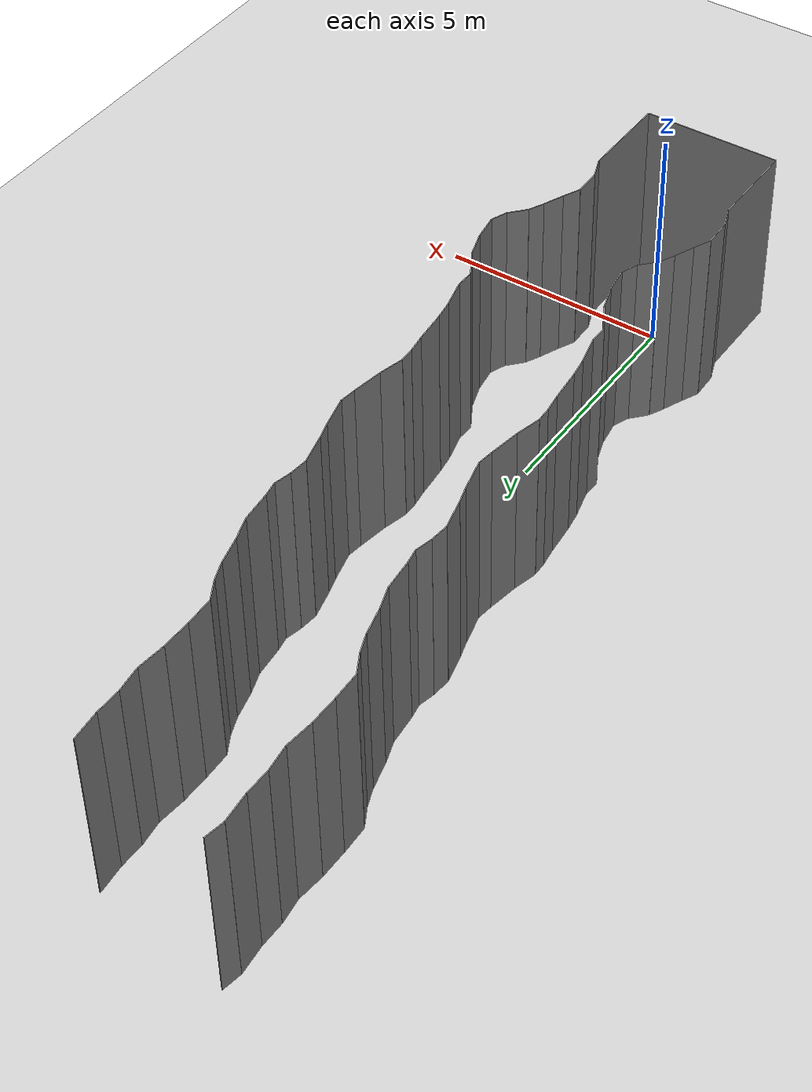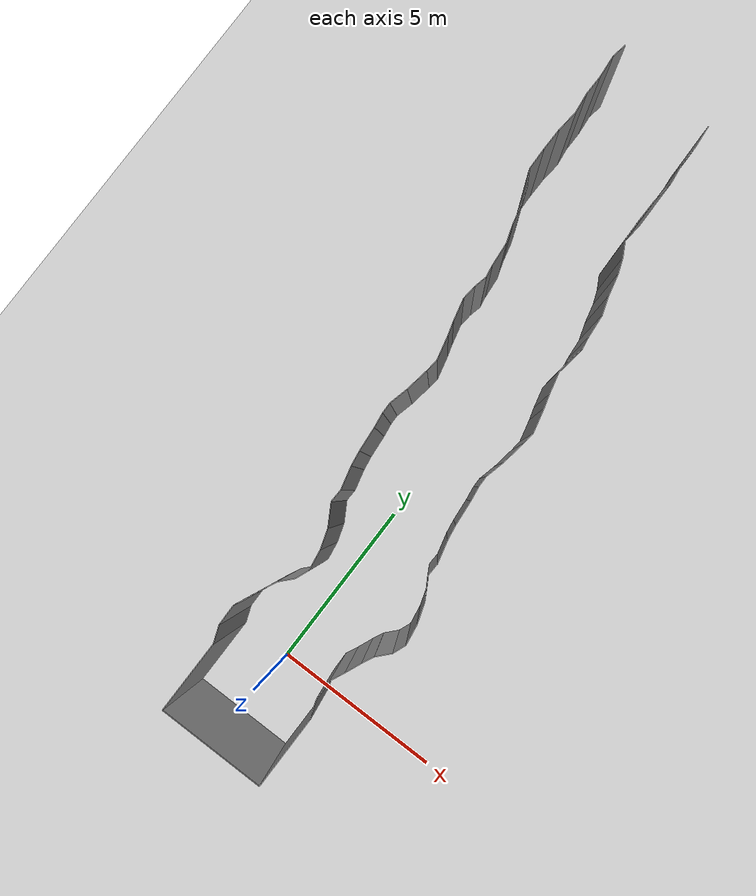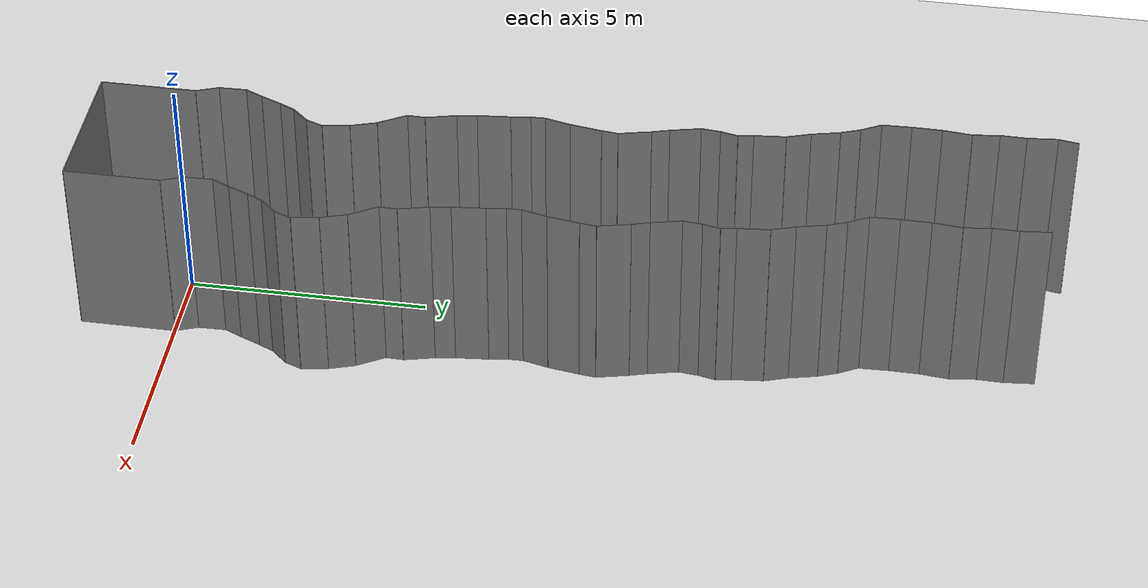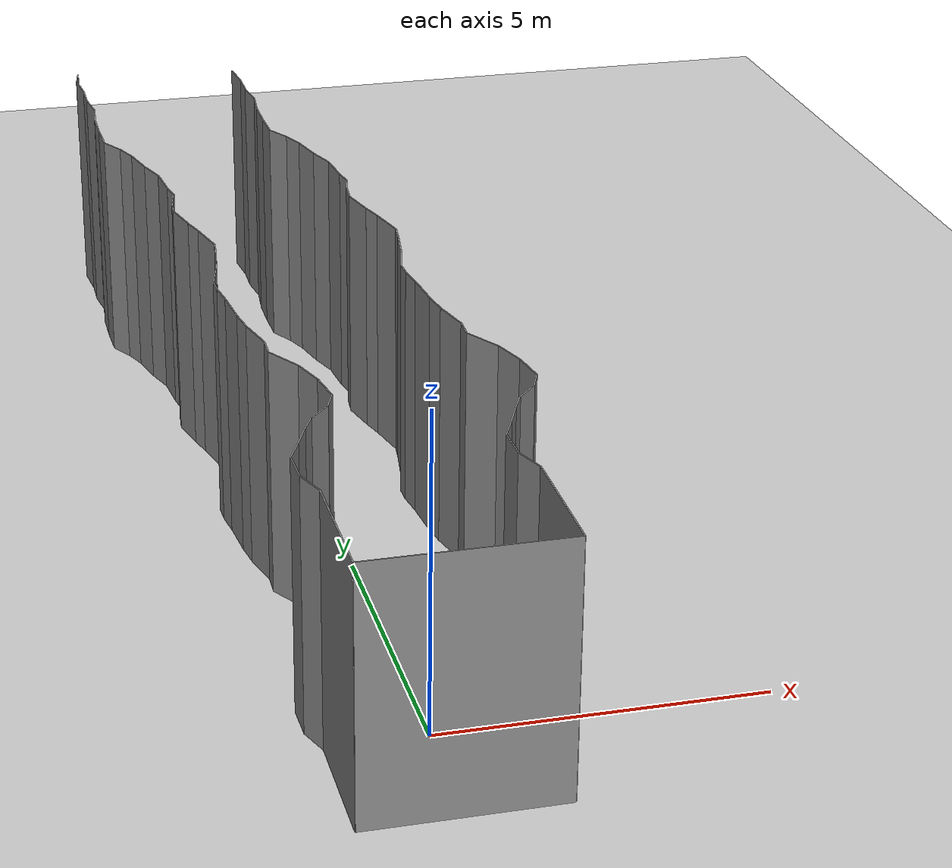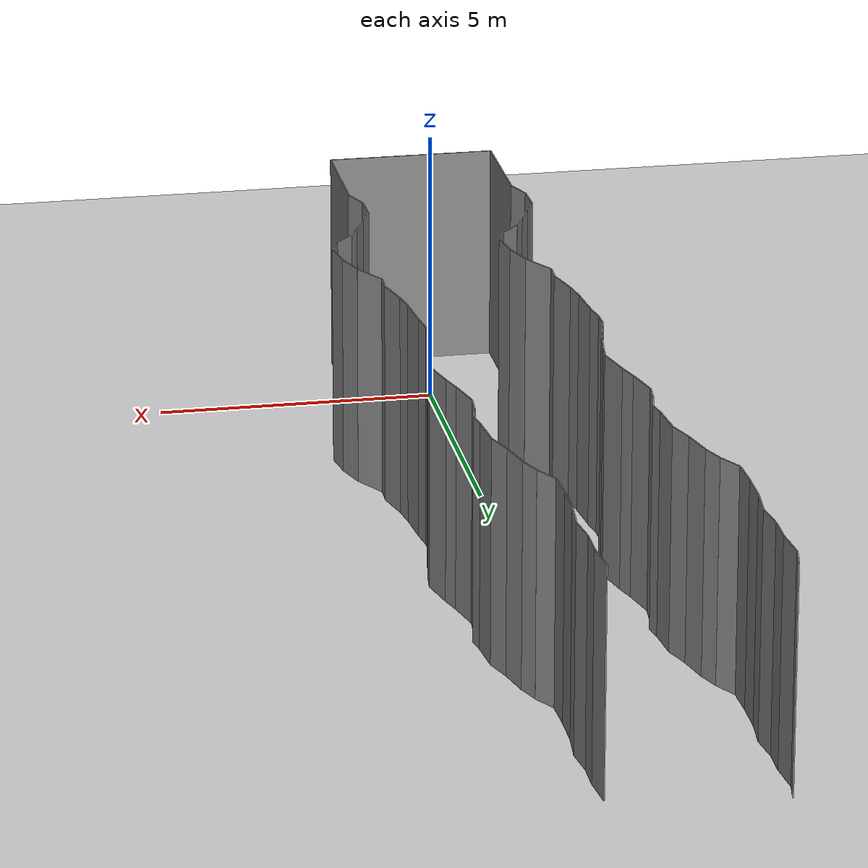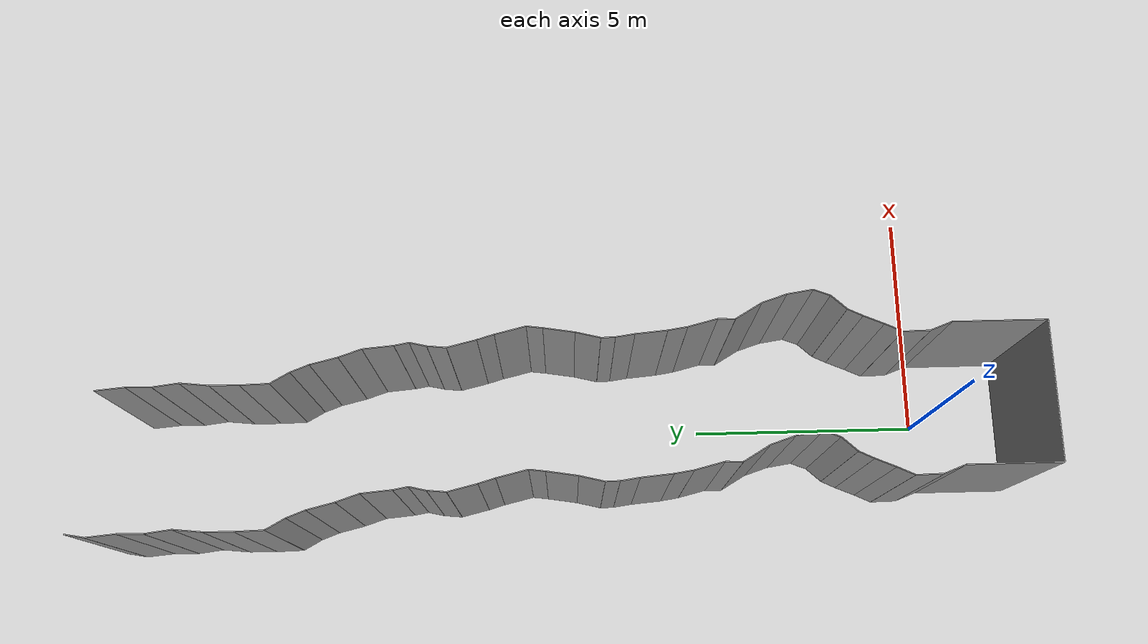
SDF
<sdf version="1.6">
 <world name="default">
  <model name="ground_plane">
   <static>1</static>
   <link name="link">
    <collision name="collision">
     <geometry><plane><normal>0 0 1</normal><size>200 200</size></plane></geometry>
     <surface><friction><ode><mu>100</mu><mu2>50</mu2></ode></friction></surface>
    </collision>
    <visual name="visual">
     <cast_shadows>0</cast_shadows>
     <geometry><plane><normal>0 0 1</normal><size>200 200</size></plane></geometry>
     <material>
      <script><uri>file://media/materials/scripts/gazebo.material</uri><name>Gazebo/Grey</name></script>
     </material>
    </visual>
   </link>
   <pose>0 100 0 0 -0 0</pose>
  </model>
  <model name="wall_back">
   <static>1</static>
   <pose>0.0 -2 2 0.0 0 0.0</pose>
   <link name="link">
    <collision name="collision"><geometry><box><size>3 0.02 4</size></box></geometry></collision>
    <visual name="visual">
     <material>
      <script><name>Gazebo/Grey</name><uri>file://media/materials/scripts/gazebo.material</uri></script>
     </material>
     <geometry><box><size>3 0.02 4</size></box></geometry>
    </visual>
   </link>
  </model>
  <model name="wall_left">
   <static>1</static>
   <pose>1.5 -1 2 0 0 0.00</pose>
   <link name="link">
    <collision name="collision"><geometry><box><size>0.02 2 4</size></box></geometry></collision>
    <visual name="visual">
     <material>
      <script><name>Gazebo/Grey</name><uri>file://media/materials/scripts/gazebo.material</uri></script>
     </material>
     <geometry><box><size>0.02 2 4</size></box></geometry>
    </visual>
   </link>
  </model>
  <model name="wall_right">
   <static>1</static>
   <pose>-1.5 -1 2 0 0 0.00</pose>
   <link name="link">
    <collision name="collision"><geometry><box><size>0.02 2 4</size></box></geometry></collision>
    <visual name="visual">
     <material>
      <script><name>Gazebo/Grey</name><uri>file://media/materials/scripts/gazebo.material</uri></script>
     </material>
     <geometry><box><size>0.02 2 4</size></box></geometry>
    </visual>
   </link>
  </model>
  <model name="wall_0">
   <static>1</static>
   <pose>-1.5876242087305774 0.23122922117364325 2 0 0 0.3622287831516997</pose>
   <link name="link">
    <collision name="collision"><geometry><box><size>0.02 0.494550117502 4</size></box></geometry></collision>
    <visual name="visual">
     <material>
      <script><name>Gazebo/Grey</name><uri>file://media/materials/scripts/gazebo.material</uri></script>
     </material>
     <geometry><box><size>0.02 0.494550117502 4</size></box></geometry>
    </visual>
   </link>
  </model>
  <model name="wall_1">
   <static>1</static>
   <pose>1.4123757912694226 0.23122922117364325 2 0 0 0.3622287831516997</pose>
   <link name="link">
    <collision name="collision"><geometry><box><size>0.02 0.494550117502 4</size></box></geometry></collision>
    <visual name="visual">
     <material>
      <script><name>Gazebo/Grey</name><uri>file://media/materials/scripts/gazebo.material</uri></script>
     </material>
     <geometry><box><size>0.02 0.494550117502 4</size></box></geometry>
    </visual>
   </link>
  </model>
  <model name="wall_2">
   <static>1</static>
   <pose>-1.681142146697931 0.7510026568677637 2 0 0 0.020422900556318437</pose>
   <link name="link">
    <collision name="collision"><geometry><box><size>0.02 0.577208800271 4</size></box></geometry></collision>
    <visual name="visual">
     <material>
      <script><name>Gazebo/Grey</name><uri>file://media/materials/scripts/gazebo.material</uri></script>
     </material>
     <geometry><box><size>0.02 0.577208800271 4</size></box></geometry>
    </visual>
   </link>
  </model>
  <model name="wall_3">
   <static>1</static>
   <pose>1.318857853302069 0.7510026568677637 2 0 0 0.020422900556318437</pose>
   <link name="link">
    <collision name="collision"><geometry><box><size>0.02 0.577208800271 4</size></box></geometry></collision>
    <visual name="visual">
     <material>
      <script><name>Gazebo/Grey</name><uri>file://media/materials/scripts/gazebo.material</uri></script>
     </material>
     <geometry><box><size>0.02 0.577208800271 4</size></box></geometry>
    </visual>
   </link>
  </model>
  <model name="wall_4">
   <static>1</static>
   <pose>-1.6010782179631144 1.2240133101605413 2 0 0 -0.4360630841983263</pose>
   <link name="link">
    <collision name="collision"><geometry><box><size>0.02 0.407021306554 4</size></box></geometry></collision>
    <visual name="visual">
     <material>
      <script><name>Gazebo/Grey</name><uri>file://media/materials/scripts/gazebo.material</uri></script>
     </material>
     <geometry><box><size>0.02 0.407021306554 4</size></box></geometry>
    </visual>
   </link>
  </model>
  <model name="wall_5">
   <static>1</static>
   <pose>1.3989217820368856 1.2240133101605413 2 0 0 -0.4360630841983263</pose>
   <link name="link">
    <collision name="collision"><geometry><box><size>0.02 0.407021306554 4</size></box></geometry></collision>
    <visual name="visual">
     <material>
      <script><name>Gazebo/Grey</name><uri>file://media/materials/scripts/gazebo.material</uri></script>
     </material>
     <geometry><box><size>0.02 0.407021306554 4</size></box></geometry>
    </visual>
   </link>
  </model>
  <model name="wall_6">
   <static>1</static>
   <pose>-1.4237968651613715 1.6241239041570183 2 0 0 -0.40059313762966453</pose>
   <link name="link">
    <collision name="collision"><geometry><box><size>0.02 0.468369166021 4</size></box></geometry></collision>
    <visual name="visual">
     <material>
      <script><name>Gazebo/Grey</name><uri>file://media/materials/scripts/gazebo.material</uri></script>
     </material>
     <geometry><box><size>0.02 0.468369166021 4</size></box></geometry>
    </visual>
   </link>
  </model>
  <model name="wall_7">
   <static>1</static>
   <pose>1.5762031348386285 1.6241239041570183 2 0 0 -0.40059313762966453</pose>
   <link name="link">
    <collision name="collision"><geometry><box><size>0.02 0.468369166021 4</size></box></geometry></collision>
    <visual name="visual">
     <material>
      <script><name>Gazebo/Grey</name><uri>file://media/materials/scripts/gazebo.material</uri></script>
     </material>
     <geometry><box><size>0.02 0.468369166021 4</size></box></geometry>
    </visual>
   </link>
  </model>
  <model name="wall_8">
   <static>1</static>
   <pose>-1.255907765241811 1.9977645921500706 2 0 0 -0.45125334471226686</pose>
   <link name="link">
    <collision name="collision"><geometry><box><size>0.02 0.351141940665 4</size></box></geometry></collision>
    <visual name="visual">
     <material>
      <script><name>Gazebo/Grey</name><uri>file://media/materials/scripts/gazebo.material</uri></script>
     </material>
     <geometry><box><size>0.02 0.351141940665 4</size></box></geometry>
    </visual>
   </link>
  </model>
  <model name="wall_9">
   <static>1</static>
   <pose>1.744092234758189 1.9977645921500706 2 0 0 -0.45125334471226686</pose>
   <link name="link">
    <collision name="collision"><geometry><box><size>0.02 0.351141940665 4</size></box></geometry></collision>
    <visual name="visual">
     <material>
      <script><name>Gazebo/Grey</name><uri>file://media/materials/scripts/gazebo.material</uri></script>
     </material>
     <geometry><box><size>0.02 0.351141940665 4</size></box></geometry>
    </visual>
   </link>
  </model>
  <model name="wall_10">
   <static>1</static>
   <pose>-1.02719313348299 2.321697933582735 2 0 0 -0.7420798301374374</pose>
   <link name="link">
    <collision name="collision"><geometry><box><size>0.02 0.450263974333 4</size></box></geometry></collision>
    <visual name="visual">
     <material>
      <script><name>Gazebo/Grey</name><uri>file://media/materials/scripts/gazebo.material</uri></script>
     </material>
     <geometry><box><size>0.02 0.450263974333 4</size></box></geometry>
    </visual>
   </link>
  </model>
  <model name="wall_11">
   <static>1</static>
   <pose>1.97280686651701 2.321697933582735 2 0 0 -0.7420798301374374</pose>
   <link name="link">
    <collision name="collision"><geometry><box><size>0.02 0.450263974333 4</size></box></geometry></collision>
    <visual name="visual">
     <material>
      <script><name>Gazebo/Grey</name><uri>file://media/materials/scripts/gazebo.material</uri></script>
     </material>
     <geometry><box><size>0.02 0.450263974333 4</size></box></geometry>
    </visual>
   </link>
  </model>
  <model name="wall_12">
   <static>1</static>
   <pose>-0.8063411990763812 2.6633253259963277 2 0 0 -0.3727617229133646</pose>
   <link name="link">
    <collision name="collision"><geometry><box><size>0.02 0.377291628684 4</size></box></geometry></collision>
    <visual name="visual">
     <material>
      <script><name>Gazebo/Grey</name><uri>file://media/materials/scripts/gazebo.material</uri></script>
     </material>
     <geometry><box><size>0.02 0.377291628684 4</size></box></geometry>
    </visual>
   </link>
  </model>
  <model name="wall_13">
   <static>1</static>
   <pose>2.1936588009236186 2.6633253259963277 2 0 0 -0.3727617229133646</pose>
   <link name="link">
    <collision name="collision"><geometry><box><size>0.02 0.377291628684 4</size></box></geometry></collision>
    <visual name="visual">
     <material>
      <script><name>Gazebo/Grey</name><uri>file://media/materials/scripts/gazebo.material</uri></script>
     </material>
     <geometry><box><size>0.02 0.377291628684 4</size></box></geometry>
    </visual>
   </link>
  </model>
  <model name="wall_14">
   <static>1</static>
   <pose>-0.7813794864882018 3.118658401591183 2 0 0 0.15516030058365127</pose>
   <link name="link">
    <collision name="collision"><geometry><box><size>0.02 0.566085498496 4</size></box></geometry></collision>
    <visual name="visual">
     <material>
      <script><name>Gazebo/Grey</name><uri>file://media/materials/scripts/gazebo.material</uri></script>
     </material>
     <geometry><box><size>0.02 0.566085498496 4</size></box></geometry>
    </visual>
   </link>
  </model>
  <model name="wall_15">
   <static>1</static>
   <pose>2.218620513511798 3.118658401591183 2 0 0 0.15516030058365127</pose>
   <link name="link">
    <collision name="collision"><geometry><box><size>0.02 0.566085498496 4</size></box></geometry></collision>
    <visual name="visual">
     <material>
      <script><name>Gazebo/Grey</name><uri>file://media/materials/scripts/gazebo.material</uri></script>
     </material>
     <geometry><box><size>0.02 0.566085498496 4</size></box></geometry>
    </visual>
   </link>
  </model>
  <model name="wall_16">
   <static>1</static>
   <pose>-0.9129578250842095 3.6653485683726394 2 0 0 0.3177733845068075</pose>
   <link name="link">
    <collision name="collision"><geometry><box><size>0.02 0.562244998529 4</size></box></geometry></collision>
    <visual name="visual">
     <material>
      <script><name>Gazebo/Grey</name><uri>file://media/materials/scripts/gazebo.material</uri></script>
     </material>
     <geometry><box><size>0.02 0.562244998529 4</size></box></geometry>
    </visual>
   </link>
  </model>
  <model name="wall_17">
   <static>1</static>
   <pose>2.0870421749157906 3.6653485683726394 2 0 0 0.3177733845068075</pose>
   <link name="link">
    <collision name="collision"><geometry><box><size>0.02 0.562244998529 4</size></box></geometry></collision>
    <visual name="visual">
     <material>
      <script><name>Gazebo/Grey</name><uri>file://media/materials/scripts/gazebo.material</uri></script>
     </material>
     <geometry><box><size>0.02 0.562244998529 4</size></box></geometry>
    </visual>
   </link>
  </model>
  <model name="wall_18">
   <static>1</static>
   <pose>-1.16911645493446 4.216795009771947 2 0 0 0.5344049792094162</pose>
   <link name="link">
    <collision name="collision"><geometry><box><size>0.02 0.660952990226 4</size></box></geometry></collision>
    <visual name="visual">
     <material>
      <script><name>Gazebo/Grey</name><uri>file://media/materials/scripts/gazebo.material</uri></script>
     </material>
     <geometry><box><size>0.02 0.660952990226 4</size></box></geometry>
    </visual>
   </link>
  </model>
  <model name="wall_19">
   <static>1</static>
   <pose>1.83088354506554 4.216795009771947 2 0 0 0.5344049792094162</pose>
   <link name="link">
    <collision name="collision"><geometry><box><size>0.02 0.660952990226 4</size></box></geometry></collision>
    <visual name="visual">
     <material>
      <script><name>Gazebo/Grey</name><uri>file://media/materials/scripts/gazebo.material</uri></script>
     </material>
     <geometry><box><size>0.02 0.660952990226 4</size></box></geometry>
    </visual>
   </link>
  </model>
  <model name="wall_20">
   <static>1</static>
   <pose>-1.331105441448903 4.685605805069305 2 0 0 -0.03432429499593664</pose>
   <link name="link">
    <collision name="collision"><geometry><box><size>0.02 0.36904143074 4</size></box></geometry></collision>
    <visual name="visual">
     <material>
      <script><name>Gazebo/Grey</name><uri>file://media/materials/scripts/gazebo.material</uri></script>
     </material>
     <geometry><box><size>0.02 0.36904143074 4</size></box></geometry>
    </visual>
   </link>
  </model>
  <model name="wall_21">
   <static>1</static>
   <pose>1.668894558551097 4.685605805069305 2 0 0 -0.03432429499593664</pose>
   <link name="link">
    <collision name="collision"><geometry><box><size>0.02 0.36904143074 4</size></box></geometry></collision>
    <visual name="visual">
     <material>
      <script><name>Gazebo/Grey</name><uri>file://media/materials/scripts/gazebo.material</uri></script>
     </material>
     <geometry><box><size>0.02 0.36904143074 4</size></box></geometry>
    </visual>
   </link>
  </model>
  <model name="wall_22">
   <static>1</static>
   <pose>-1.4038712028018625 5.185495743198005 2 0 0 0.24566048931518805</pose>
   <link name="link">
    <collision name="collision"><geometry><box><size>0.02 0.650485401973 4</size></box></geometry></collision>
    <visual name="visual">
     <material>
      <script><name>Gazebo/Grey</name><uri>file://media/materials/scripts/gazebo.material</uri></script>
     </material>
     <geometry><box><size>0.02 0.650485401973 4</size></box></geometry>
    </visual>
   </link>
  </model>
  <model name="wall_23">
   <static>1</static>
   <pose>1.5961287971981375 5.185495743198005 2 0 0 0.24566048931518805</pose>
   <link name="link">
    <collision name="collision"><geometry><box><size>0.02 0.650485401973 4</size></box></geometry></collision>
    <visual name="visual">
     <material>
      <script><name>Gazebo/Grey</name><uri>file://media/materials/scripts/gazebo.material</uri></script>
     </material>
     <geometry><box><size>0.02 0.650485401973 4</size></box></geometry>
    </visual>
   </link>
  </model>
  <model name="wall_24">
   <static>1</static>
   <pose>-1.5147877099640366 5.708636104299 2 0 0 0.15203950040561762</pose>
   <link name="link">
    <collision name="collision"><geometry><box><size>0.02 0.420171904778 4</size></box></geometry></collision>
    <visual name="visual">
     <material>
      <script><name>Gazebo/Grey</name><uri>file://media/materials/scripts/gazebo.material</uri></script>
     </material>
     <geometry><box><size>0.02 0.420171904778 4</size></box></geometry>
    </visual>
   </link>
  </model>
  <model name="wall_25">
   <static>1</static>
   <pose>1.4852122900359634 5.708636104299 2 0 0 0.15203950040561762</pose>
   <link name="link">
    <collision name="collision"><geometry><box><size>0.02 0.420171904778 4</size></box></geometry></collision>
    <visual name="visual">
     <material>
      <script><name>Gazebo/Grey</name><uri>file://media/materials/scripts/gazebo.material</uri></script>
     </material>
     <geometry><box><size>0.02 0.420171904778 4</size></box></geometry>
    </visual>
   </link>
  </model>
  <model name="wall_26">
   <static>1</static>
   <pose>-1.5774709605451498 6.2586213639950525 2 0 0 0.08991972691887315</pose>
   <link name="link">
    <collision name="collision"><geometry><box><size>0.02 0.687422842123 4</size></box></geometry></collision>
    <visual name="visual">
     <material>
      <script><name>Gazebo/Grey</name><uri>file://media/materials/scripts/gazebo.material</uri></script>
     </material>
     <geometry><box><size>0.02 0.687422842123 4</size></box></geometry>
    </visual>
   </link>
  </model>
  <model name="wall_27">
   <static>1</static>
   <pose>1.4225290394548502 6.2586213639950525 2 0 0 0.08991972691887315</pose>
   <link name="link">
    <collision name="collision"><geometry><box><size>0.02 0.687422842123 4</size></box></geometry></collision>
    <visual name="visual">
     <material>
      <script><name>Gazebo/Grey</name><uri>file://media/materials/scripts/gazebo.material</uri></script>
     </material>
     <geometry><box><size>0.02 0.687422842123 4</size></box></geometry>
    </visual>
   </link>
  </model>
  <model name="wall_28">
   <static>1</static>
   <pose>-1.6373584938601033 6.80442644468633 2 0 0 0.14167469839129435</pose>
   <link name="link">
    <collision name="collision"><geometry><box><size>0.02 0.411083223317 4</size></box></geometry></collision>
    <visual name="visual">
     <material>
      <script><name>Gazebo/Grey</name><uri>file://media/materials/scripts/gazebo.material</uri></script>
     </material>
     <geometry><box><size>0.02 0.411083223317 4</size></box></geometry>
    </visual>
   </link>
  </model>
  <model name="wall_29">
   <static>1</static>
   <pose>1.3626415061398967 6.80442644468633 2 0 0 0.14167469839129435</pose>
   <link name="link">
    <collision name="collision"><geometry><box><size>0.02 0.411083223317 4</size></box></geometry></collision>
    <visual name="visual">
     <material>
      <script><name>Gazebo/Grey</name><uri>file://media/materials/scripts/gazebo.material</uri></script>
     </material>
     <geometry><box><size>0.02 0.411083223317 4</size></box></geometry>
    </visual>
   </link>
  </model>
  <model name="wall_30">
   <static>1</static>
   <pose>-1.6694018304596874 7.158968021976017 2 0 0 0.01999350823538828</pose>
   <link name="link">
    <collision name="collision"><geometry><box><size>0.02 0.302179003537 4</size></box></geometry></collision>
    <visual name="visual">
     <material>
      <script><name>Gazebo/Grey</name><uri>file://media/materials/scripts/gazebo.material</uri></script>
     </material>
     <geometry><box><size>0.02 0.302179003537 4</size></box></geometry>
    </visual>
   </link>
  </model>
  <model name="wall_31">
   <static>1</static>
   <pose>1.3305981695403126 7.158968021976017 2 0 0 0.01999350823538828</pose>
   <link name="link">
    <collision name="collision"><geometry><box><size>0.02 0.302179003537 4</size></box></geometry></collision>
    <visual name="visual">
     <material>
      <script><name>Gazebo/Grey</name><uri>file://media/materials/scripts/gazebo.material</uri></script>
     </material>
     <geometry><box><size>0.02 0.302179003537 4</size></box></geometry>
    </visual>
   </link>
  </model>
  <model name="wall_32">
   <static>1</static>
   <pose>-1.60668591949283 7.577563180676779 2 0 0 -0.24093796002070506</pose>
   <link name="link">
    <collision name="collision"><geometry><box><size>0.02 0.550987198429 4</size></box></geometry></collision>
    <visual name="visual">
     <material>
      <script><name>Gazebo/Grey</name><uri>file://media/materials/scripts/gazebo.material</uri></script>
     </material>
     <geometry><box><size>0.02 0.550987198429 4</size></box></geometry>
    </visual>
   </link>
  </model>
  <model name="wall_33">
   <static>1</static>
   <pose>1.39331408050717 7.577563180676779 2 0 0 -0.24093796002070506</pose>
   <link name="link">
    <collision name="collision"><geometry><box><size>0.02 0.550987198429 4</size></box></geometry></collision>
    <visual name="visual">
     <material>
      <script><name>Gazebo/Grey</name><uri>file://media/materials/scripts/gazebo.material</uri></script>
     </material>
     <geometry><box><size>0.02 0.550987198429 4</size></box></geometry>
    </visual>
   </link>
  </model>
  <model name="wall_34">
   <static>1</static>
   <pose>-1.487517134799927 8.177891859906683 2 0 0 -0.15919845278859174</pose>
   <link name="link">
    <collision name="collision"><geometry><box><size>0.02 0.674109995206 4</size></box></geometry></collision>
    <visual name="visual">
     <material>
      <script><name>Gazebo/Grey</name><uri>file://media/materials/scripts/gazebo.material</uri></script>
     </material>
     <geometry><box><size>0.02 0.674109995206 4</size></box></geometry>
    </visual>
   </link>
  </model>
  <model name="wall_35">
   <static>1</static>
   <pose>1.512482865200073 8.177891859906683 2 0 0 -0.15919845278859174</pose>
   <link name="link">
    <collision name="collision"><geometry><box><size>0.02 0.674109995206 4</size></box></geometry></collision>
    <visual name="visual">
     <material>
      <script><name>Gazebo/Grey</name><uri>file://media/materials/scripts/gazebo.material</uri></script>
     </material>
     <geometry><box><size>0.02 0.674109995206 4</size></box></geometry>
    </visual>
   </link>
  </model>
  <model name="wall_36">
   <static>1</static>
   <pose>-1.412522938305828 8.683055036649566 2 0 0 -0.12444431391176167</pose>
   <link name="link">
    <collision name="collision"><geometry><box><size>0.02 0.347427431331 4</size></box></geometry></collision>
    <visual name="visual">
     <material>
      <script><name>Gazebo/Grey</name><uri>file://media/materials/scripts/gazebo.material</uri></script>
     </material>
     <geometry><box><size>0.02 0.347427431331 4</size></box></geometry>
    </visual>
   </link>
  </model>
  <model name="wall_37">
   <static>1</static>
   <pose>1.587477061694172 8.683055036649566 2 0 0 -0.12444431391176167</pose>
   <link name="link">
    <collision name="collision"><geometry><box><size>0.02 0.347427431331 4</size></box></geometry></collision>
    <visual name="visual">
     <material>
      <script><name>Gazebo/Grey</name><uri>file://media/materials/scripts/gazebo.material</uri></script>
     </material>
     <geometry><box><size>0.02 0.347427431331 4</size></box></geometry>
    </visual>
   </link>
  </model>
  <model name="wall_38">
   <static>1</static>
   <pose>-1.4709376676508863 9.189374222242328 2 0 0 0.23506058787245998</pose>
   <link name="link">
    <collision name="collision"><geometry><box><size>0.02 0.686784070273 4</size></box></geometry></collision>
    <visual name="visual">
     <material>
      <script><name>Gazebo/Grey</name><uri>file://media/materials/scripts/gazebo.material</uri></script>
     </material>
     <geometry><box><size>0.02 0.686784070273 4</size></box></geometry>
    </visual>
   </link>
  </model>
  <model name="wall_39">
   <static>1</static>
   <pose>1.5290623323491137 9.189374222242328 2 0 0 0.23506058787245998</pose>
   <link name="link">
    <collision name="collision"><geometry><box><size>0.02 0.686784070273 4</size></box></geometry></collision>
    <visual name="visual">
     <material>
      <script><name>Gazebo/Grey</name><uri>file://media/materials/scripts/gazebo.material</uri></script>
     </material>
     <geometry><box><size>0.02 0.686784070273 4</size></box></geometry>
    </visual>
   </link>
  </model>
  <model name="wall_40">
   <static>1</static>
   <pose>-1.6040678549878593 9.703110389431103 2 0 0 0.2874581484592028</pose>
   <link name="link">
    <collision name="collision"><geometry><box><size>0.02 0.374960172206 4</size></box></geometry></collision>
    <visual name="visual">
     <material>
      <script><name>Gazebo/Grey</name><uri>file://media/materials/scripts/gazebo.material</uri></script>
     </material>
     <geometry><box><size>0.02 0.374960172206 4</size></box></geometry>
    </visual>
   </link>
  </model>
  <model name="wall_41">
   <static>1</static>
   <pose>1.3959321450121407 9.703110389431103 2 0 0 0.2874581484592028</pose>
   <link name="link">
    <collision name="collision"><geometry><box><size>0.02 0.374960172206 4</size></box></geometry></collision>
    <visual name="visual">
     <material>
      <script><name>Gazebo/Grey</name><uri>file://media/materials/scripts/gazebo.material</uri></script>
     </material>
     <geometry><box><size>0.02 0.374960172206 4</size></box></geometry>
    </visual>
   </link>
  </model>
  <model name="wall_42">
   <static>1</static>
   <pose>-1.7329389687149759 10.197243570213887 2 0 0 0.23637074936883762</pose>
   <link name="link">
    <collision name="collision"><geometry><box><size>0.02 0.646672914891 4</size></box></geometry></collision>
    <visual name="visual">
     <material>
      <script><name>Gazebo/Grey</name><uri>file://media/materials/scripts/gazebo.material</uri></script>
     </material>
     <geometry><box><size>0.02 0.646672914891 4</size></box></geometry>
    </visual>
   </link>
  </model>
  <model name="wall_43">
   <static>1</static>
   <pose>1.2670610312850241 10.197243570213887 2 0 0 0.23637074936883762</pose>
   <link name="link">
    <collision name="collision"><geometry><box><size>0.02 0.646672914891 4</size></box></geometry></collision>
    <visual name="visual">
     <material>
      <script><name>Gazebo/Grey</name><uri>file://media/materials/scripts/gazebo.material</uri></script>
     </material>
     <geometry><box><size>0.02 0.646672914891 4</size></box></geometry>
    </visual>
   </link>
  </model>
  <model name="wall_44">
   <static>1</static>
   <pose>-1.7885054831007305 10.713606101822911 2 0 0 -0.09942066980862506</pose>
   <link name="link">
    <collision name="collision"><geometry><box><size>0.02 0.406038453251 4</size></box></geometry></collision>
    <visual name="visual">
     <material>
      <script><name>Gazebo/Grey</name><uri>file://media/materials/scripts/gazebo.material</uri></script>
     </material>
     <geometry><box><size>0.02 0.406038453251 4</size></box></geometry>
    </visual>
   </link>
  </model>
  <model name="wall_45">
   <static>1</static>
   <pose>1.2114945168992695 10.713606101822911 2 0 0 -0.09942066980862506</pose>
   <link name="link">
    <collision name="collision"><geometry><box><size>0.02 0.406038453251 4</size></box></geometry></collision>
    <visual name="visual">
     <material>
      <script><name>Gazebo/Grey</name><uri>file://media/materials/scripts/gazebo.material</uri></script>
     </material>
     <geometry><box><size>0.02 0.406038453251 4</size></box></geometry>
    </visual>
   </link>
  </model>
  <model name="wall_46">
   <static>1</static>
   <pose>-1.7268397135744855 11.09805291973203 2 0 0 -0.22375441806541252</pose>
   <link name="link">
    <collision name="collision"><geometry><box><size>0.02 0.374188315208 4</size></box></geometry></collision>
    <visual name="visual">
     <material>
      <script><name>Gazebo/Grey</name><uri>file://media/materials/scripts/gazebo.material</uri></script>
     </material>
     <geometry><box><size>0.02 0.374188315208 4</size></box></geometry>
    </visual>
   </link>
  </model>
  <model name="wall_47">
   <static>1</static>
   <pose>1.2731602864255145 11.09805291973203 2 0 0 -0.22375441806541252</pose>
   <link name="link">
    <collision name="collision"><geometry><box><size>0.02 0.374188315208 4</size></box></geometry></collision>
    <visual name="visual">
     <material>
      <script><name>Gazebo/Grey</name><uri>file://media/materials/scripts/gazebo.material</uri></script>
     </material>
     <geometry><box><size>0.02 0.374188315208 4</size></box></geometry>
    </visual>
   </link>
  </model>
  <model name="wall_48">
   <static>1</static>
   <pose>-1.712931874517814 11.438604195088564 2 0 0 0.1728508186799411</pose>
   <link name="link">
    <collision name="collision"><geometry><box><size>0.02 0.321026067793 4</size></box></geometry></collision>
    <visual name="visual">
     <material>
      <script><name>Gazebo/Grey</name><uri>file://media/materials/scripts/gazebo.material</uri></script>
     </material>
     <geometry><box><size>0.02 0.321026067793 4</size></box></geometry>
    </visual>
   </link>
  </model>
  <model name="wall_49">
   <static>1</static>
   <pose>1.287068125482186 11.438604195088564 2 0 0 0.1728508186799411</pose>
   <link name="link">
    <collision name="collision"><geometry><box><size>0.02 0.321026067793 4</size></box></geometry></collision>
    <visual name="visual">
     <material>
      <script><name>Gazebo/Grey</name><uri>file://media/materials/scripts/gazebo.material</uri></script>
     </material>
     <geometry><box><size>0.02 0.321026067793 4</size></box></geometry>
    </visual>
   </link>
  </model>
  <model name="wall_50">
   <static>1</static>
   <pose>-1.7701084362684687 11.92697386785074 2 0 0 0.08929959817835817</pose>
   <link name="link">
    <collision name="collision"><geometry><box><size>0.02 0.663139381106 4</size></box></geometry></collision>
    <visual name="visual">
     <material>
      <script><name>Gazebo/Grey</name><uri>file://media/materials/scripts/gazebo.material</uri></script>
     </material>
     <geometry><box><size>0.02 0.663139381106 4</size></box></geometry>
    </visual>
   </link>
  </model>
  <model name="wall_51">
   <static>1</static>
   <pose>1.2298915637315313 11.92697386785074 2 0 0 0.08929959817835817</pose>
   <link name="link">
    <collision name="collision"><geometry><box><size>0.02 0.663139381106 4</size></box></geometry></collision>
    <visual name="visual">
     <material>
      <script><name>Gazebo/Grey</name><uri>file://media/materials/scripts/gazebo.material</uri></script>
     </material>
     <geometry><box><size>0.02 0.663139381106 4</size></box></geometry>
    </visual>
   </link>
  </model>
  <model name="wall_52">
   <static>1</static>
   <pose>-1.8816833254051153 12.50215341112657 2 0 0 0.32307835433799564</pose>
   <link name="link">
    <collision name="collision"><geometry><box><size>0.02 0.516589009522 4</size></box></geometry></collision>
    <visual name="visual">
     <material>
      <script><name>Gazebo/Grey</name><uri>file://media/materials/scripts/gazebo.material</uri></script>
     </material>
     <geometry><box><size>0.02 0.516589009522 4</size></box></geometry>
    </visual>
   </link>
  </model>
  <model name="wall_53">
   <static>1</static>
   <pose>1.1183166745948847 12.50215341112657 2 0 0 0.32307835433799564</pose>
   <link name="link">
    <collision name="collision"><geometry><box><size>0.02 0.516589009522 4</size></box></geometry></collision>
    <visual name="visual">
     <material>
      <script><name>Gazebo/Grey</name><uri>file://media/materials/scripts/gazebo.material</uri></script>
     </material>
     <geometry><box><size>0.02 0.516589009522 4</size></box></geometry>
    </visual>
   </link>
  </model>
  <model name="wall_54">
   <static>1</static>
   <pose>-2.0352472689060357 13.041144281243845 2 0 0 0.23870783770549567</pose>
   <link name="link">
    <collision name="collision"><geometry><box><size>0.02 0.605282928543 4</size></box></geometry></collision>
    <visual name="visual">
     <material>
      <script><name>Gazebo/Grey</name><uri>file://media/materials/scripts/gazebo.material</uri></script>
     </material>
     <geometry><box><size>0.02 0.605282928543 4</size></box></geometry>
    </visual>
   </link>
  </model>
  <model name="wall_55">
   <static>1</static>
   <pose>0.9647527310939643 13.041144281243845 2 0 0 0.23870783770549567</pose>
   <link name="link">
    <collision name="collision"><geometry><box><size>0.02 0.605282928543 4</size></box></geometry></collision>
    <visual name="visual">
     <material>
      <script><name>Gazebo/Grey</name><uri>file://media/materials/scripts/gazebo.material</uri></script>
     </material>
     <geometry><box><size>0.02 0.605282928543 4</size></box></geometry>
    </visual>
   </link>
  </model>
  <model name="wall_56">
   <static>1</static>
   <pose>-2.181981559114251 13.533577426280555 2 0 0 0.36223788628466375</pose>
   <link name="link">
    <collision name="collision"><geometry><box><size>0.02 0.424279727035 4</size></box></geometry></collision>
    <visual name="visual">
     <material>
      <script><name>Gazebo/Grey</name><uri>file://media/materials/scripts/gazebo.material</uri></script>
     </material>
     <geometry><box><size>0.02 0.424279727035 4</size></box></geometry>
    </visual>
   </link>
  </model>
  <model name="wall_57">
   <static>1</static>
   <pose>0.8180184408857492 13.533577426280555 2 0 0 0.36223788628466375</pose>
   <link name="link">
    <collision name="collision"><geometry><box><size>0.02 0.424279727035 4</size></box></geometry></collision>
    <visual name="visual">
     <material>
      <script><name>Gazebo/Grey</name><uri>file://media/materials/scripts/gazebo.material</uri></script>
     </material>
     <geometry><box><size>0.02 0.424279727035 4</size></box></geometry>
    </visual>
   </link>
  </model>
  <model name="wall_58">
   <static>1</static>
   <pose>-2.3720656886717433 13.938891062008437 2 0 0 0.5068833346539584</pose>
   <link name="link">
    <collision name="collision"><geometry><box><size>0.02 0.473405929821 4</size></box></geometry></collision>
    <visual name="visual">
     <material>
      <script><name>Gazebo/Grey</name><uri>file://media/materials/scripts/gazebo.material</uri></script>
     </material>
     <geometry><box><size>0.02 0.473405929821 4</size></box></geometry>
    </visual>
   </link>
  </model>
  <model name="wall_59">
   <static>1</static>
   <pose>0.6279343113282567 13.938891062008437 2 0 0 0.5068833346539584</pose>
   <link name="link">
    <collision name="collision"><geometry><box><size>0.02 0.473405929821 4</size></box></geometry></collision>
    <visual name="visual">
     <material>
      <script><name>Gazebo/Grey</name><uri>file://media/materials/scripts/gazebo.material</uri></script>
     </material>
     <geometry><box><size>0.02 0.473405929821 4</size></box></geometry>
    </visual>
   </link>
  </model>
  <model name="wall_60">
   <static>1</static>
   <pose>-2.4952888274189093 14.45307274430188 2 0 0 0.027055320883748808</pose>
   <link name="link">
    <collision name="collision"><geometry><box><size>0.02 0.614707633505 4</size></box></geometry></collision>
    <visual name="visual">
     <material>
      <script><name>Gazebo/Grey</name><uri>file://media/materials/scripts/gazebo.material</uri></script>
     </material>
     <geometry><box><size>0.02 0.614707633505 4</size></box></geometry>
    </visual>
   </link>
  </model>
  <model name="wall_61">
   <static>1</static>
   <pose>0.5047111725810907 14.45307274430188 2 0 0 0.027055320883748808</pose>
   <link name="link">
    <collision name="collision"><geometry><box><size>0.02 0.614707633505 4</size></box></geometry></collision>
    <visual name="visual">
     <material>
      <script><name>Gazebo/Grey</name><uri>file://media/materials/scripts/gazebo.material</uri></script>
     </material>
     <geometry><box><size>0.02 0.614707633505 4</size></box></geometry>
    </visual>
   </link>
  </model>
  <model name="wall_62">
   <static>1</static>
   <pose>-2.499990943019349 15.072449960833302 2 0 0 -0.011572731674872171</pose>
   <link name="link">
    <collision name="collision"><geometry><box><size>0.02 0.624313571979 4</size></box></geometry></collision>
    <visual name="visual">
     <material>
      <script><name>Gazebo/Grey</name><uri>file://media/materials/scripts/gazebo.material</uri></script>
     </material>
     <geometry><box><size>0.02 0.624313571979 4</size></box></geometry>
    </visual>
   </link>
  </model>
  <model name="wall_63">
   <static>1</static>
   <pose>0.5000090569806508 15.072449960833302 2 0 0 -0.011572731674872171</pose>
   <link name="link">
    <collision name="collision"><geometry><box><size>0.02 0.624313571979 4</size></box></geometry></collision>
    <visual name="visual">
     <material>
      <script><name>Gazebo/Grey</name><uri>file://media/materials/scripts/gazebo.material</uri></script>
     </material>
     <geometry><box><size>0.02 0.624313571979 4</size></box></geometry>
    </visual>
   </link>
  </model>
  <model name="wall_64">
   <static>1</static>
   <pose>-2.4647111280425635 15.69189225065522 2 0 0 -0.10268580669380363</pose>
   <link name="link">
    <collision name="collision"><geometry><box><size>0.02 0.617867465502 4</size></box></geometry></collision>
    <visual name="visual">
     <material>
      <script><name>Gazebo/Grey</name><uri>file://media/materials/scripts/gazebo.material</uri></script>
     </material>
     <geometry><box><size>0.02 0.617867465502 4</size></box></geometry>
    </visual>
   </link>
  </model>
  <model name="wall_65">
   <static>1</static>
   <pose>0.5352888719574365 15.69189225065522 2 0 0 -0.10268580669380363</pose>
   <link name="link">
    <collision name="collision"><geometry><box><size>0.02 0.617867465502 4</size></box></geometry></collision>
    <visual name="visual">
     <material>
      <script><name>Gazebo/Grey</name><uri>file://media/materials/scripts/gazebo.material</uri></script>
     </material>
     <geometry><box><size>0.02 0.617867465502 4</size></box></geometry>
    </visual>
   </link>
  </model>
  <model name="wall_66">
   <static>1</static>
   <pose>-2.4679788271992855 16.277859687895326 2 0 0 0.12471700563986159</pose>
   <link name="link">
    <collision name="collision"><geometry><box><size>0.02 0.561684716599 4</size></box></geometry></collision>
    <visual name="visual">
     <material>
      <script><name>Gazebo/Grey</name><uri>file://media/materials/scripts/gazebo.material</uri></script>
     </material>
     <geometry><box><size>0.02 0.561684716599 4</size></box></geometry>
    </visual>
   </link>
  </model>
  <model name="wall_67">
   <static>1</static>
   <pose>0.5320211728007145 16.277859687895326 2 0 0 0.12471700563986159</pose>
   <link name="link">
    <collision name="collision"><geometry><box><size>0.02 0.561684716599 4</size></box></geometry></collision>
    <visual name="visual">
     <material>
      <script><name>Gazebo/Grey</name><uri>file://media/materials/scripts/gazebo.material</uri></script>
     </material>
     <geometry><box><size>0.02 0.561684716599 4</size></box></geometry>
    </visual>
   </link>
  </model>
  <model name="wall_68">
   <static>1</static>
   <pose>-2.498371072976488 16.830205705115194 2 0 0 -0.016597275477892057</pose>
   <link name="link">
    <collision name="collision"><geometry><box><size>0.02 0.547445374265 4</size></box></geometry></collision>
    <visual name="visual">
     <material>
      <script><name>Gazebo/Grey</name><uri>file://media/materials/scripts/gazebo.material</uri></script>
     </material>
     <geometry><box><size>0.02 0.547445374265 4</size></box></geometry>
    </visual>
   </link>
  </model>
  <model name="wall_69">
   <static>1</static>
   <pose>0.5016289270235119 16.830205705115194 2 0 0 -0.016597275477892057</pose>
   <link name="link">
    <collision name="collision"><geometry><box><size>0.02 0.547445374265 4</size></box></geometry></collision>
    <visual name="visual">
     <material>
      <script><name>Gazebo/Grey</name><uri>file://media/materials/scripts/gazebo.material</uri></script>
     </material>
     <geometry><box><size>0.02 0.547445374265 4</size></box></geometry>
    </visual>
   </link>
  </model>
  <model name="wall_70">
   <static>1</static>
   <pose>-2.522846252412302 17.420816195063075 2 0 0 0.09130643256531172</pose>
   <link name="link">
    <collision name="collision"><geometry><box><size>0.02 0.636502380477 4</size></box></geometry></collision>
    <visual name="visual">
     <material>
      <script><name>Gazebo/Grey</name><uri>file://media/materials/scripts/gazebo.material</uri></script>
     </material>
     <geometry><box><size>0.02 0.636502380477 4</size></box></geometry>
    </visual>
   </link>
  </model>
  <model name="wall_71">
   <static>1</static>
   <pose>0.4771537475876979 17.420816195063075 2 0 0 0.09130643256531172</pose>
   <link name="link">
    <collision name="collision"><geometry><box><size>0.02 0.636502380477 4</size></box></geometry></collision>
    <visual name="visual">
     <material>
      <script><name>Gazebo/Grey</name><uri>file://media/materials/scripts/gazebo.material</uri></script>
     </material>
     <geometry><box><size>0.02 0.636502380477 4</size></box></geometry>
    </visual>
   </link>
  </model>
  <model name="wall_72">
   <static>1</static>
   <pose>-2.5143831706178212 17.948344836911566 2 0 0 -0.1761262419085541</pose>
   <link name="link">
    <collision name="collision"><geometry><box><size>0.02 0.427824801418 4</size></box></geometry></collision>
    <visual name="visual">
     <material>
      <script><name>Gazebo/Grey</name><uri>file://media/materials/scripts/gazebo.material</uri></script>
     </material>
     <geometry><box><size>0.02 0.427824801418 4</size></box></geometry>
    </visual>
   </link>
  </model>
 </world>
</sdf>
